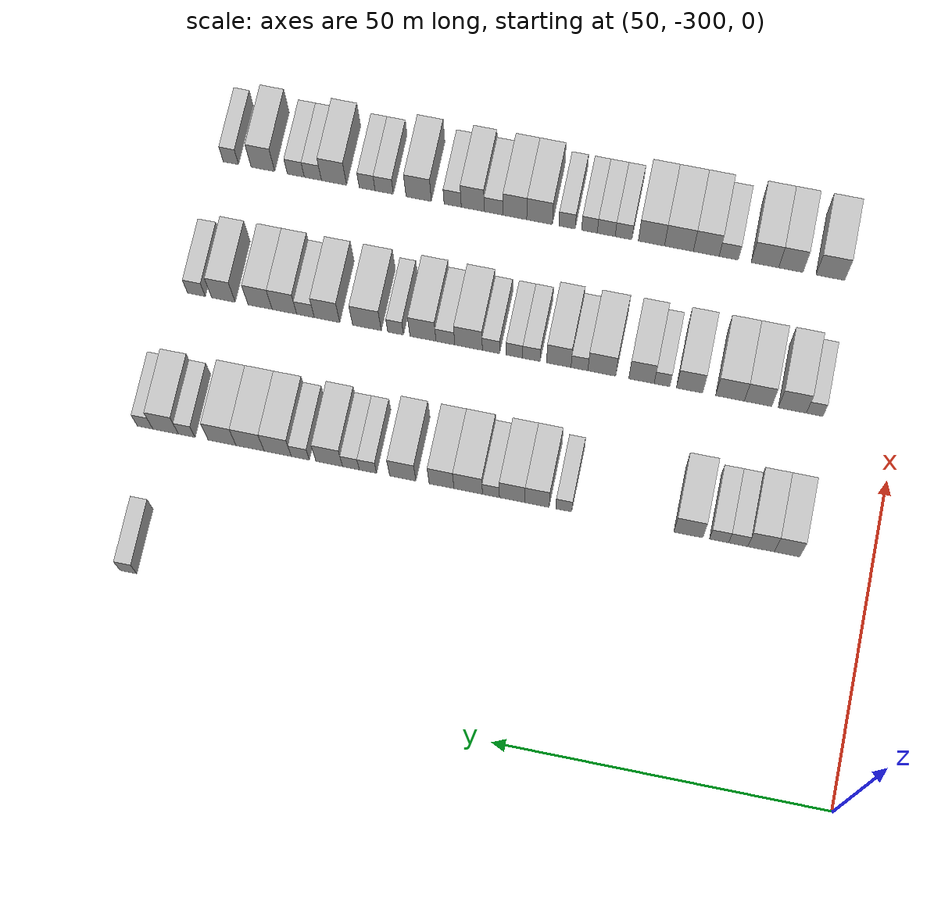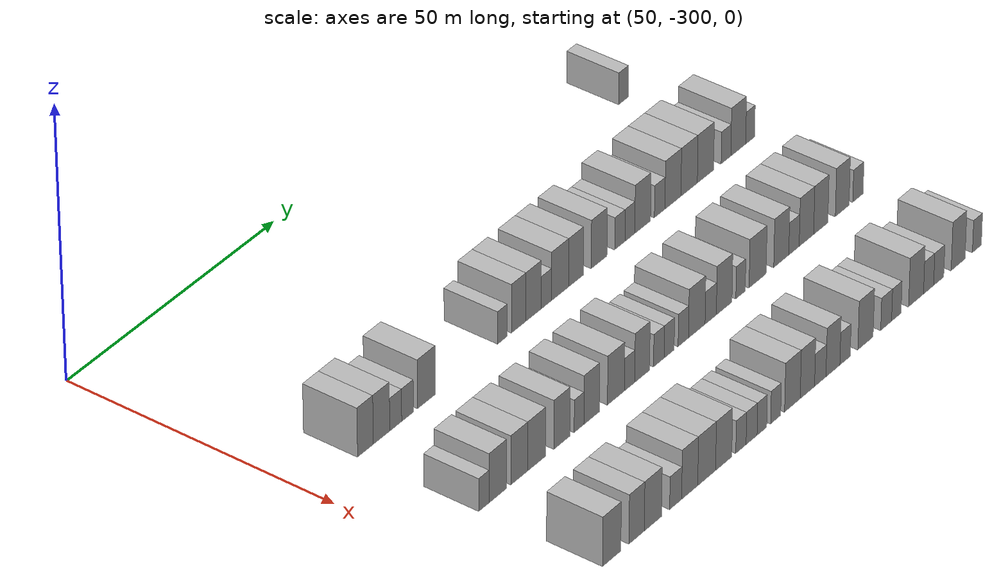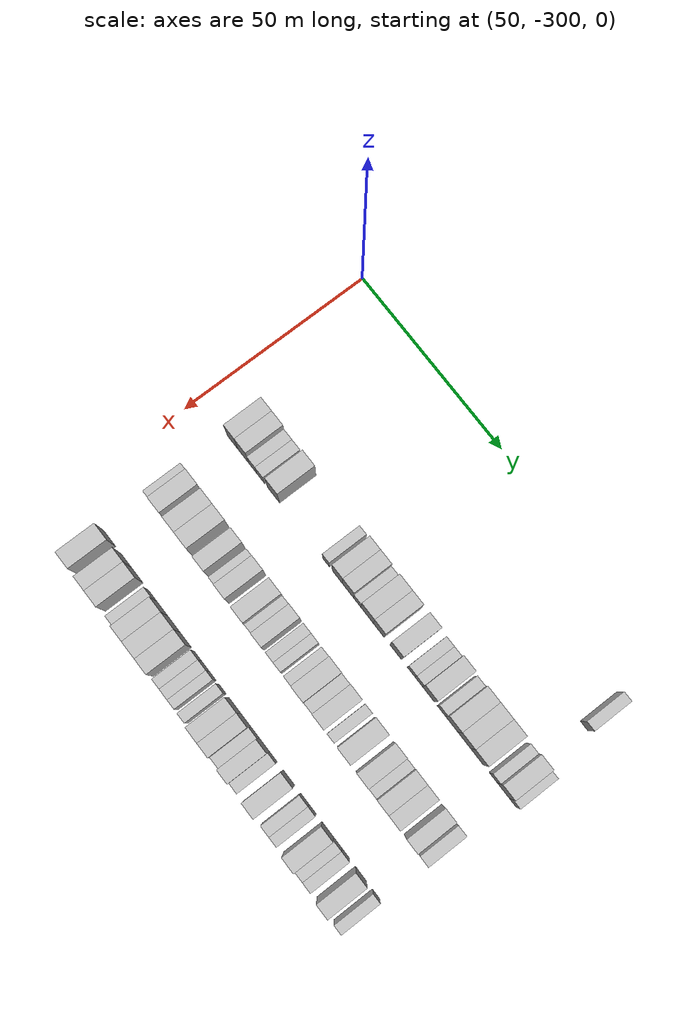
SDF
<sdf version="1.6">
 <world name="default">
  <model name="building_446">
   <static>1</static>
   <pose>69.0000 -192.4682 0 0.000000 0.000000 0.000000</pose>
   <link name="link">
    <pose>0 0 3.00 0 0 0</pose>
    <collision name="collision"><geometry><box><size>10.0000 2.5432 6.0000</size></box></geometry></collision>
    <visual name="visual">
     <cast_shadows>0</cast_shadows>
     <geometry><box><size>10.0000 2.5432 6.0000</size></box></geometry>
     <material>
      <script>
       <uri>model://HANNAS_wall/materials/scripts</uri>
       <uri>model://HANNAS_wall/materials/textures</uri>
       <name>vrc/HANNAS_wall</name>
      </script>
     </material>
    </visual>
   </link>
  </model>
  <model name="building_604">
   <static>1</static>
   <pose>91.0000 -287.2692 0 0.000000 0.000000 0.000000</pose>
   <link name="link">
    <pose>0 0 4.50 0 0 0</pose>
    <collision name="collision"><geometry><box><size>10.0000 3.8065 9.0000</size></box></geometry></collision>
    <visual name="visual">
     <cast_shadows>0</cast_shadows>
     <geometry><box><size>10.0000 3.8065 9.0000</size></box></geometry>
     <material>
      <script>
       <uri>model://HANNAS_wall/materials/scripts</uri>
       <uri>model://HANNAS_wall/materials/textures</uri>
       <name>vrc/HANNAS_wall</name>
      </script>
     </material>
    </visual>
   </link>
  </model>
  <model name="building_605">
   <static>1</static>
   <pose>91.0000 -283.3731 0 0.000000 0.000000 0.000000</pose>
   <link name="link">
    <pose>0 0 4.50 0 0 0</pose>
    <collision name="collision"><geometry><box><size>10.0000 3.9858 9.0000</size></box></geometry></collision>
    <visual name="visual">
     <cast_shadows>0</cast_shadows>
     <geometry><box><size>10.0000 3.9858 9.0000</size></box></geometry>
     <material>
      <script>
       <uri>model://HANNAS_wall/materials/scripts</uri>
       <uri>model://HANNAS_wall/materials/textures</uri>
       <name>vrc/HANNAS_wall</name>
      </script>
     </material>
    </visual>
   </link>
  </model>
  <model name="building_606">
   <static>1</static>
   <pose>91.0000 -279.9372 0 0.000000 0.000000 0.000000</pose>
   <link name="link">
    <pose>0 0 3.00 0 0 0</pose>
    <collision name="collision"><geometry><box><size>10.0000 2.8860 6.0000</size></box></geometry></collision>
    <visual name="visual">
     <cast_shadows>0</cast_shadows>
     <geometry><box><size>10.0000 2.8860 6.0000</size></box></geometry>
     <material>
      <script>
       <uri>model://HANNAS_wall/materials/scripts</uri>
       <uri>model://HANNAS_wall/materials/textures</uri>
       <name>vrc/HANNAS_wall</name>
      </script>
     </material>
    </visual>
   </link>
  </model>
  <model name="building_607">
   <static>1</static>
   <pose>91.0000 -277.0546 0 0.000000 0.000000 0.000000</pose>
   <link name="link">
    <pose>0 0 3.00 0 0 0</pose>
    <collision name="collision"><geometry><box><size>10.0000 2.8790 6.0000</size></box></geometry></collision>
    <visual name="visual">
     <cast_shadows>0</cast_shadows>
     <geometry><box><size>10.0000 2.8790 6.0000</size></box></geometry>
     <material>
      <script>
       <uri>model://HANNAS_wall/materials/scripts</uri>
       <uri>model://HANNAS_wall/materials/textures</uri>
       <name>vrc/HANNAS_wall</name>
      </script>
     </material>
    </visual>
   </link>
  </model>
  <model name="building_608">
   <static>1</static>
   <pose>91.0000 -272.4295 0 0.000000 0.000000 0.000000</pose>
   <link name="link">
    <pose>0 0 4.50 0 0 0</pose>
    <collision name="collision"><geometry><box><size>10.0000 4.3712 9.0000</size></box></geometry></collision>
    <visual name="visual">
     <cast_shadows>0</cast_shadows>
     <geometry><box><size>10.0000 4.3712 9.0000</size></box></geometry>
     <material>
      <script>
       <uri>model://HANNAS_wall/materials/scripts</uri>
       <uri>model://HANNAS_wall/materials/textures</uri>
       <name>vrc/HANNAS_wall</name>
      </script>
     </material>
    </visual>
   </link>
  </model>
  <model name="building_609">
   <static>1</static>
   <pose>91.0000 -253.5992 0 0.000000 0.000000 0.000000</pose>
   <link name="link">
    <pose>0 0 3.00 0 0 0</pose>
    <collision name="collision"><geometry><box><size>10.0000 2.4298 6.0000</size></box></geometry></collision>
    <visual name="visual">
     <cast_shadows>0</cast_shadows>
     <geometry><box><size>10.0000 2.4298 6.0000</size></box></geometry>
     <material>
      <script>
       <uri>model://HANNAS_wall/materials/scripts</uri>
       <uri>model://HANNAS_wall/materials/textures</uri>
       <name>vrc/HANNAS_wall</name>
      </script>
     </material>
    </visual>
   </link>
  </model>
  <model name="building_610">
   <static>1</static>
   <pose>91.0000 -249.5439 0 0.000000 0.000000 0.000000</pose>
   <link name="link">
    <pose>0 0 4.50 0 0 0</pose>
    <collision name="collision"><geometry><box><size>10.0000 3.6807 9.0000</size></box></geometry></collision>
    <visual name="visual">
     <cast_shadows>0</cast_shadows>
     <geometry><box><size>10.0000 3.6807 9.0000</size></box></geometry>
     <material>
      <script>
       <uri>model://HANNAS_wall/materials/scripts</uri>
       <uri>model://HANNAS_wall/materials/textures</uri>
       <name>vrc/HANNAS_wall</name>
      </script>
     </material>
    </visual>
   </link>
  </model>
  <model name="building_611">
   <static>1</static>
   <pose>91.0000 -245.7711 0 0.000000 0.000000 0.000000</pose>
   <link name="link">
    <pose>0 0 4.50 0 0 0</pose>
    <collision name="collision"><geometry><box><size>10.0000 3.8650 9.0000</size></box></geometry></collision>
    <visual name="visual">
     <cast_shadows>0</cast_shadows>
     <geometry><box><size>10.0000 3.8650 9.0000</size></box></geometry>
     <material>
      <script>
       <uri>model://HANNAS_wall/materials/scripts</uri>
       <uri>model://HANNAS_wall/materials/textures</uri>
       <name>vrc/HANNAS_wall</name>
      </script>
     </material>
    </visual>
   </link>
  </model>
  <model name="building_612">
   <static>1</static>
   <pose>91.0000 -242.5501 0 0.000000 0.000000 0.000000</pose>
   <link name="link">
    <pose>0 0 3.00 0 0 0</pose>
    <collision name="collision"><geometry><box><size>10.0000 2.5770 6.0000</size></box></geometry></collision>
    <visual name="visual">
     <cast_shadows>0</cast_shadows>
     <geometry><box><size>10.0000 2.5770 6.0000</size></box></geometry>
     <material>
      <script>
       <uri>model://HANNAS_wall/materials/scripts</uri>
       <uri>model://HANNAS_wall/materials/textures</uri>
       <name>vrc/HANNAS_wall</name>
      </script>
     </material>
    </visual>
   </link>
  </model>
  <model name="building_613">
   <static>1</static>
   <pose>91.0000 -239.0880 0 0.000000 0.000000 0.000000</pose>
   <link name="link">
    <pose>0 0 4.50 0 0 0</pose>
    <collision name="collision"><geometry><box><size>10.0000 4.3472 9.0000</size></box></geometry></collision>
    <visual name="visual">
     <cast_shadows>0</cast_shadows>
     <geometry><box><size>10.0000 4.3472 9.0000</size></box></geometry>
     <material>
      <script>
       <uri>model://HANNAS_wall/materials/scripts</uri>
       <uri>model://HANNAS_wall/materials/textures</uri>
       <name>vrc/HANNAS_wall</name>
      </script>
     </material>
    </visual>
   </link>
  </model>
  <model name="building_614">
   <static>1</static>
   <pose>91.0000 -235.0269 0 0.000000 0.000000 0.000000</pose>
   <link name="link">
    <pose>0 0 4.50 0 0 0</pose>
    <collision name="collision"><geometry><box><size>10.0000 3.7748 9.0000</size></box></geometry></collision>
    <visual name="visual">
     <cast_shadows>0</cast_shadows>
     <geometry><box><size>10.0000 3.7748 9.0000</size></box></geometry>
     <material>
      <script>
       <uri>model://HANNAS_wall/materials/scripts</uri>
       <uri>model://HANNAS_wall/materials/textures</uri>
       <name>vrc/HANNAS_wall</name>
      </script>
     </material>
    </visual>
   </link>
  </model>
  <model name="building_615">
   <static>1</static>
   <pose>91.0000 -229.1299 0 0.000000 0.000000 0.000000</pose>
   <link name="link">
    <pose>0 0 4.50 0 0 0</pose>
    <collision name="collision"><geometry><box><size>10.0000 4.0194 9.0000</size></box></geometry></collision>
    <visual name="visual">
     <cast_shadows>0</cast_shadows>
     <geometry><box><size>10.0000 4.0194 9.0000</size></box></geometry>
     <material>
      <script>
       <uri>model://HANNAS_wall/materials/scripts</uri>
       <uri>model://HANNAS_wall/materials/textures</uri>
       <name>vrc/HANNAS_wall</name>
      </script>
     </material>
    </visual>
   </link>
  </model>
  <model name="building_616">
   <static>1</static>
   <pose>91.0000 -223.7991 0 0.000000 0.000000 0.000000</pose>
   <link name="link">
    <pose>0 0 3.00 0 0 0</pose>
    <collision name="collision"><geometry><box><size>10.0000 2.6422 6.0000</size></box></geometry></collision>
    <visual name="visual">
     <cast_shadows>0</cast_shadows>
     <geometry><box><size>10.0000 2.6422 6.0000</size></box></geometry>
     <material>
      <script>
       <uri>model://HANNAS_wall/materials/scripts</uri>
       <uri>model://HANNAS_wall/materials/textures</uri>
       <name>vrc/HANNAS_wall</name>
      </script>
     </material>
    </visual>
   </link>
  </model>
  <model name="building_617">
   <static>1</static>
   <pose>91.0000 -221.1960 0 0.000000 0.000000 0.000000</pose>
   <link name="link">
    <pose>0 0 3.00 0 0 0</pose>
    <collision name="collision"><geometry><box><size>10.0000 2.5639 6.0000</size></box></geometry></collision>
    <visual name="visual">
     <cast_shadows>0</cast_shadows>
     <geometry><box><size>10.0000 2.5639 6.0000</size></box></geometry>
     <material>
      <script>
       <uri>model://HANNAS_wall/materials/scripts</uri>
       <uri>model://HANNAS_wall/materials/textures</uri>
       <name>vrc/HANNAS_wall</name>
      </script>
     </material>
    </visual>
   </link>
  </model>
  <model name="building_618">
   <static>1</static>
   <pose>91.0000 -217.8744 0 0.000000 0.000000 0.000000</pose>
   <link name="link">
    <pose>0 0 4.50 0 0 0</pose>
    <collision name="collision"><geometry><box><size>10.0000 4.0793 9.0000</size></box></geometry></collision>
    <visual name="visual">
     <cast_shadows>0</cast_shadows>
     <geometry><box><size>10.0000 4.0793 9.0000</size></box></geometry>
     <material>
      <script>
       <uri>model://HANNAS_wall/materials/scripts</uri>
       <uri>model://HANNAS_wall/materials/textures</uri>
       <name>vrc/HANNAS_wall</name>
      </script>
     </material>
    </visual>
   </link>
  </model>
  <model name="building_619">
   <static>1</static>
   <pose>91.0000 -213.4507 0 0.000000 0.000000 0.000000</pose>
   <link name="link">
    <pose>0 0 3.00 0 0 0</pose>
    <collision name="collision"><geometry><box><size>10.0000 2.7682 6.0000</size></box></geometry></collision>
    <visual name="visual">
     <cast_shadows>0</cast_shadows>
     <geometry><box><size>10.0000 2.7682 6.0000</size></box></geometry>
     <material>
      <script>
       <uri>model://HANNAS_wall/materials/scripts</uri>
       <uri>model://HANNAS_wall/materials/textures</uri>
       <name>vrc/HANNAS_wall</name>
      </script>
     </material>
    </visual>
   </link>
  </model>
  <model name="building_620">
   <static>1</static>
   <pose>91.0000 -209.9729 0 0.000000 0.000000 0.000000</pose>
   <link name="link">
    <pose>0 0 4.50 0 0 0</pose>
    <collision name="collision"><geometry><box><size>10.0000 4.1872 9.0000</size></box></geometry></collision>
    <visual name="visual">
     <cast_shadows>0</cast_shadows>
     <geometry><box><size>10.0000 4.1872 9.0000</size></box></geometry>
     <material>
      <script>
       <uri>model://HANNAS_wall/materials/scripts</uri>
       <uri>model://HANNAS_wall/materials/textures</uri>
       <name>vrc/HANNAS_wall</name>
      </script>
     </material>
    </visual>
   </link>
  </model>
  <model name="building_621">
   <static>1</static>
   <pose>91.0000 -205.7217 0 0.000000 0.000000 0.000000</pose>
   <link name="link">
    <pose>0 0 4.50 0 0 0</pose>
    <collision name="collision"><geometry><box><size>10.0000 4.3152 9.0000</size></box></geometry></collision>
    <visual name="visual">
     <cast_shadows>0</cast_shadows>
     <geometry><box><size>10.0000 4.3152 9.0000</size></box></geometry>
     <material>
      <script>
       <uri>model://HANNAS_wall/materials/scripts</uri>
       <uri>model://HANNAS_wall/materials/textures</uri>
       <name>vrc/HANNAS_wall</name>
      </script>
     </material>
    </visual>
   </link>
  </model>
  <model name="building_622">
   <static>1</static>
   <pose>91.0000 -201.4120 0 0.000000 0.000000 0.000000</pose>
   <link name="link">
    <pose>0 0 4.50 0 0 0</pose>
    <collision name="collision"><geometry><box><size>10.0000 4.3044 9.0000</size></box></geometry></collision>
    <visual name="visual">
     <cast_shadows>0</cast_shadows>
     <geometry><box><size>10.0000 4.3044 9.0000</size></box></geometry>
     <material>
      <script>
       <uri>model://HANNAS_wall/materials/scripts</uri>
       <uri>model://HANNAS_wall/materials/textures</uri>
       <name>vrc/HANNAS_wall</name>
      </script>
     </material>
    </visual>
   </link>
  </model>
  <model name="building_623">
   <static>1</static>
   <pose>91.0000 -195.9735 0 0.000000 0.000000 0.000000</pose>
   <link name="link">
    <pose>0 0 3.00 0 0 0</pose>
    <collision name="collision"><geometry><box><size>10.0000 2.5724 6.0000</size></box></geometry></collision>
    <visual name="visual">
     <cast_shadows>0</cast_shadows>
     <geometry><box><size>10.0000 2.5724 6.0000</size></box></geometry>
     <material>
      <script>
       <uri>model://HANNAS_wall/materials/scripts</uri>
       <uri>model://HANNAS_wall/materials/textures</uri>
       <name>vrc/HANNAS_wall</name>
      </script>
     </material>
    </visual>
   </link>
  </model>
  <model name="building_624">
   <static>1</static>
   <pose>91.0000 -192.7049 0 0.000000 0.000000 0.000000</pose>
   <link name="link">
    <pose>0 0 4.50 0 0 0</pose>
    <collision name="collision"><geometry><box><size>10.0000 3.9648 9.0000</size></box></geometry></collision>
    <visual name="visual">
     <cast_shadows>0</cast_shadows>
     <geometry><box><size>10.0000 3.9648 9.0000</size></box></geometry>
     <material>
      <script>
       <uri>model://HANNAS_wall/materials/scripts</uri>
       <uri>model://HANNAS_wall/materials/textures</uri>
       <name>vrc/HANNAS_wall</name>
      </script>
     </material>
    </visual>
   </link>
  </model>
  <model name="building_625">
   <static>1</static>
   <pose>91.0000 -189.5216 0 0.000000 0.000000 0.000000</pose>
   <link name="link">
    <pose>0 0 3.00 0 0 0</pose>
    <collision name="collision"><geometry><box><size>10.0000 2.4017 6.0000</size></box></geometry></collision>
    <visual name="visual">
     <cast_shadows>0</cast_shadows>
     <geometry><box><size>10.0000 2.4017 6.0000</size></box></geometry>
     <material>
      <script>
       <uri>model://HANNAS_wall/materials/scripts</uri>
       <uri>model://HANNAS_wall/materials/textures</uri>
       <name>vrc/HANNAS_wall</name>
      </script>
     </material>
    </visual>
   </link>
  </model>
  <model name="building_793">
   <static>1</static>
   <pose>113.0000 -287.7156 0 0.000000 0.000000 0.000000</pose>
   <link name="link">
    <pose>0 0 3.00 0 0 0</pose>
    <collision name="collision"><geometry><box><size>10.0000 2.5190 6.0000</size></box></geometry></collision>
    <visual name="visual">
     <cast_shadows>0</cast_shadows>
     <geometry><box><size>10.0000 2.5190 6.0000</size></box></geometry>
     <material>
      <script>
       <uri>model://HANNAS_wall/materials/scripts</uri>
       <uri>model://HANNAS_wall/materials/textures</uri>
       <name>vrc/HANNAS_wall</name>
      </script>
     </material>
    </visual>
   </link>
  </model>
  <model name="building_794">
   <static>1</static>
   <pose>113.0000 -284.3190 0 0.000000 0.000000 0.000000</pose>
   <link name="link">
    <pose>0 0 4.50 0 0 0</pose>
    <collision name="collision"><geometry><box><size>10.0000 4.2742 9.0000</size></box></geometry></collision>
    <visual name="visual">
     <cast_shadows>0</cast_shadows>
     <geometry><box><size>10.0000 4.2742 9.0000</size></box></geometry>
     <material>
      <script>
       <uri>model://HANNAS_wall/materials/scripts</uri>
       <uri>model://HANNAS_wall/materials/textures</uri>
       <name>vrc/HANNAS_wall</name>
      </script>
     </material>
    </visual>
   </link>
  </model>
  <model name="building_795">
   <static>1</static>
   <pose>113.0000 -279.0881 0 0.000000 0.000000 0.000000</pose>
   <link name="link">
    <pose>0 0 4.50 0 0 0</pose>
    <collision name="collision"><geometry><box><size>10.0000 4.1875 9.0000</size></box></geometry></collision>
    <visual name="visual">
     <cast_shadows>0</cast_shadows>
     <geometry><box><size>10.0000 4.1875 9.0000</size></box></geometry>
     <material>
      <script>
       <uri>model://HANNAS_wall/materials/scripts</uri>
       <uri>model://HANNAS_wall/materials/textures</uri>
       <name>vrc/HANNAS_wall</name>
      </script>
     </material>
    </visual>
   </link>
  </model>
  <model name="building_796">
   <static>1</static>
   <pose>113.0000 -274.7979 0 0.000000 0.000000 0.000000</pose>
   <link name="link">
    <pose>0 0 4.50 0 0 0</pose>
    <collision name="collision"><geometry><box><size>10.0000 4.3929 9.0000</size></box></geometry></collision>
    <visual name="visual">
     <cast_shadows>0</cast_shadows>
     <geometry><box><size>10.0000 4.3929 9.0000</size></box></geometry>
     <material>
      <script>
       <uri>model://HANNAS_wall/materials/scripts</uri>
       <uri>model://HANNAS_wall/materials/textures</uri>
       <name>vrc/HANNAS_wall</name>
      </script>
     </material>
    </visual>
   </link>
  </model>
  <model name="building_797">
   <static>1</static>
   <pose>113.0000 -268.5914 0 0.000000 0.000000 0.000000</pose>
   <link name="link">
    <pose>0 0 4.50 0 0 0</pose>
    <collision name="collision"><geometry><box><size>10.0000 4.0203 9.0000</size></box></geometry></collision>
    <visual name="visual">
     <cast_shadows>0</cast_shadows>
     <geometry><box><size>10.0000 4.0203 9.0000</size></box></geometry>
     <material>
      <script>
       <uri>model://HANNAS_wall/materials/scripts</uri>
       <uri>model://HANNAS_wall/materials/textures</uri>
       <name>vrc/HANNAS_wall</name>
      </script>
     </material>
    </visual>
   </link>
  </model>
  <model name="building_798">
   <static>1</static>
   <pose>113.0000 -264.3754 0 0.000000 0.000000 0.000000</pose>
   <link name="link">
    <pose>0 0 3.00 0 0 0</pose>
    <collision name="collision"><geometry><box><size>10.0000 2.4116 6.0000</size></box></geometry></collision>
    <visual name="visual">
     <cast_shadows>0</cast_shadows>
     <geometry><box><size>10.0000 2.4116 6.0000</size></box></geometry>
     <material>
      <script>
       <uri>model://HANNAS_wall/materials/scripts</uri>
       <uri>model://HANNAS_wall/materials/textures</uri>
       <name>vrc/HANNAS_wall</name>
      </script>
     </material>
    </visual>
   </link>
  </model>
  <model name="building_799">
   <static>1</static>
   <pose>113.0000 -261.2168 0 0.000000 0.000000 0.000000</pose>
   <link name="link">
    <pose>0 0 4.50 0 0 0</pose>
    <collision name="collision"><geometry><box><size>10.0000 3.9056 9.0000</size></box></geometry></collision>
    <visual name="visual">
     <cast_shadows>0</cast_shadows>
     <geometry><box><size>10.0000 3.9056 9.0000</size></box></geometry>
     <material>
      <script>
       <uri>model://HANNAS_wall/materials/scripts</uri>
       <uri>model://HANNAS_wall/materials/textures</uri>
       <name>vrc/HANNAS_wall</name>
      </script>
     </material>
    </visual>
   </link>
  </model>
  <model name="building_800">
   <static>1</static>
   <pose>113.0000 -255.1199 0 0.000000 0.000000 0.000000</pose>
   <link name="link">
    <pose>0 0 4.50 0 0 0</pose>
    <collision name="collision"><geometry><box><size>10.0000 4.2883 9.0000</size></box></geometry></collision>
    <visual name="visual">
     <cast_shadows>0</cast_shadows>
     <geometry><box><size>10.0000 4.2883 9.0000</size></box></geometry>
     <material>
      <script>
       <uri>model://HANNAS_wall/materials/scripts</uri>
       <uri>model://HANNAS_wall/materials/textures</uri>
       <name>vrc/HANNAS_wall</name>
      </script>
     </material>
    </visual>
   </link>
  </model>
  <model name="building_801">
   <static>1</static>
   <pose>113.0000 -251.6773 0 0.000000 0.000000 0.000000</pose>
   <link name="link">
    <pose>0 0 3.00 0 0 0</pose>
    <collision name="collision"><geometry><box><size>10.0000 2.5969 6.0000</size></box></geometry></collision>
    <visual name="visual">
     <cast_shadows>0</cast_shadows>
     <geometry><box><size>10.0000 2.5969 6.0000</size></box></geometry>
     <material>
      <script>
       <uri>model://HANNAS_wall/materials/scripts</uri>
       <uri>model://HANNAS_wall/materials/textures</uri>
       <name>vrc/HANNAS_wall</name>
      </script>
     </material>
    </visual>
   </link>
  </model>
  <model name="building_802">
   <static>1</static>
   <pose>113.0000 -248.5006 0 0.000000 0.000000 0.000000</pose>
   <link name="link">
    <pose>0 0 4.50 0 0 0</pose>
    <collision name="collision"><geometry><box><size>10.0000 3.7564 9.0000</size></box></geometry></collision>
    <visual name="visual">
     <cast_shadows>0</cast_shadows>
     <geometry><box><size>10.0000 3.7564 9.0000</size></box></geometry>
     <material>
      <script>
       <uri>model://HANNAS_wall/materials/scripts</uri>
       <uri>model://HANNAS_wall/materials/textures</uri>
       <name>vrc/HANNAS_wall</name>
      </script>
     </material>
    </visual>
   </link>
  </model>
  <model name="building_803">
   <static>1</static>
   <pose>113.0000 -244.2729 0 0.000000 0.000000 0.000000</pose>
   <link name="link">
    <pose>0 0 3.00 0 0 0</pose>
    <collision name="collision"><geometry><box><size>10.0000 2.6989 6.0000</size></box></geometry></collision>
    <visual name="visual">
     <cast_shadows>0</cast_shadows>
     <geometry><box><size>10.0000 2.6989 6.0000</size></box></geometry>
     <material>
      <script>
       <uri>model://HANNAS_wall/materials/scripts</uri>
       <uri>model://HANNAS_wall/materials/textures</uri>
       <name>vrc/HANNAS_wall</name>
      </script>
     </material>
    </visual>
   </link>
  </model>
  <model name="building_804">
   <static>1</static>
   <pose>113.0000 -241.6447 0 0.000000 0.000000 0.000000</pose>
   <link name="link">
    <pose>0 0 3.00 0 0 0</pose>
    <collision name="collision"><geometry><box><size>10.0000 2.5574 6.0000</size></box></geometry></collision>
    <visual name="visual">
     <cast_shadows>0</cast_shadows>
     <geometry><box><size>10.0000 2.5574 6.0000</size></box></geometry>
     <material>
      <script>
       <uri>model://HANNAS_wall/materials/scripts</uri>
       <uri>model://HANNAS_wall/materials/textures</uri>
       <name>vrc/HANNAS_wall</name>
      </script>
     </material>
    </visual>
   </link>
  </model>
  <model name="building_805">
   <static>1</static>
   <pose>113.0000 -238.0315 0 0.000000 0.000000 0.000000</pose>
   <link name="link">
    <pose>0 0 3.00 0 0 0</pose>
    <collision name="collision"><geometry><box><size>10.0000 2.6691 6.0000</size></box></geometry></collision>
    <visual name="visual">
     <cast_shadows>0</cast_shadows>
     <geometry><box><size>10.0000 2.6691 6.0000</size></box></geometry>
     <material>
      <script>
       <uri>model://HANNAS_wall/materials/scripts</uri>
       <uri>model://HANNAS_wall/materials/textures</uri>
       <name>vrc/HANNAS_wall</name>
      </script>
     </material>
    </visual>
   </link>
  </model>
  <model name="building_806">
   <static>1</static>
   <pose>113.0000 -234.5622 0 0.000000 0.000000 0.000000</pose>
   <link name="link">
    <pose>0 0 4.50 0 0 0</pose>
    <collision name="collision"><geometry><box><size>10.0000 4.2696 9.0000</size></box></geometry></collision>
    <visual name="visual">
     <cast_shadows>0</cast_shadows>
     <geometry><box><size>10.0000 4.2696 9.0000</size></box></geometry>
     <material>
      <script>
       <uri>model://HANNAS_wall/materials/scripts</uri>
       <uri>model://HANNAS_wall/materials/textures</uri>
       <name>vrc/HANNAS_wall</name>
      </script>
     </material>
    </visual>
   </link>
  </model>
  <model name="building_807">
   <static>1</static>
   <pose>113.0000 -230.9724 0 0.000000 0.000000 0.000000</pose>
   <link name="link">
    <pose>0 0 3.00 0 0 0</pose>
    <collision name="collision"><geometry><box><size>10.0000 2.9099 6.0000</size></box></geometry></collision>
    <visual name="visual">
     <cast_shadows>0</cast_shadows>
     <geometry><box><size>10.0000 2.9099 6.0000</size></box></geometry>
     <material>
      <script>
       <uri>model://HANNAS_wall/materials/scripts</uri>
       <uri>model://HANNAS_wall/materials/textures</uri>
       <name>vrc/HANNAS_wall</name>
      </script>
     </material>
    </visual>
   </link>
  </model>
  <model name="building_808">
   <static>1</static>
   <pose>113.0000 -227.4947 0 0.000000 0.000000 0.000000</pose>
   <link name="link">
    <pose>0 0 4.50 0 0 0</pose>
    <collision name="collision"><geometry><box><size>10.0000 4.0455 9.0000</size></box></geometry></collision>
    <visual name="visual">
     <cast_shadows>0</cast_shadows>
     <geometry><box><size>10.0000 4.0455 9.0000</size></box></geometry>
     <material>
      <script>
       <uri>model://HANNAS_wall/materials/scripts</uri>
       <uri>model://HANNAS_wall/materials/textures</uri>
       <name>vrc/HANNAS_wall</name>
      </script>
     </material>
    </visual>
   </link>
  </model>
  <model name="building_809">
   <static>1</static>
   <pose>113.0000 -223.2456 0 0.000000 0.000000 0.000000</pose>
   <link name="link">
    <pose>0 0 3.00 0 0 0</pose>
    <collision name="collision"><geometry><box><size>10.0000 2.4526 6.0000</size></box></geometry></collision>
    <visual name="visual">
     <cast_shadows>0</cast_shadows>
     <geometry><box><size>10.0000 2.4526 6.0000</size></box></geometry>
     <material>
      <script>
       <uri>model://HANNAS_wall/materials/scripts</uri>
       <uri>model://HANNAS_wall/materials/textures</uri>
       <name>vrc/HANNAS_wall</name>
      </script>
     </material>
    </visual>
   </link>
  </model>
  <model name="building_810">
   <static>1</static>
   <pose>113.0000 -218.7899 0 0.000000 0.000000 0.000000</pose>
   <link name="link">
    <pose>0 0 4.50 0 0 0</pose>
    <collision name="collision"><geometry><box><size>10.0000 4.4589 9.0000</size></box></geometry></collision>
    <visual name="visual">
     <cast_shadows>0</cast_shadows>
     <geometry><box><size>10.0000 4.4589 9.0000</size></box></geometry>
     <material>
      <script>
       <uri>model://HANNAS_wall/materials/scripts</uri>
       <uri>model://HANNAS_wall/materials/textures</uri>
       <name>vrc/HANNAS_wall</name>
      </script>
     </material>
    </visual>
   </link>
  </model>
  <model name="building_811">
   <static>1</static>
   <pose>113.0000 -212.5765 0 0.000000 0.000000 0.000000</pose>
   <link name="link">
    <pose>0 0 4.50 0 0 0</pose>
    <collision name="collision"><geometry><box><size>10.0000 3.9678 9.0000</size></box></geometry></collision>
    <visual name="visual">
     <cast_shadows>0</cast_shadows>
     <geometry><box><size>10.0000 3.9678 9.0000</size></box></geometry>
     <material>
      <script>
       <uri>model://HANNAS_wall/materials/scripts</uri>
       <uri>model://HANNAS_wall/materials/textures</uri>
       <name>vrc/HANNAS_wall</name>
      </script>
     </material>
    </visual>
   </link>
  </model>
  <model name="building_812">
   <static>1</static>
   <pose>113.0000 -209.2162 0 0.000000 0.000000 0.000000</pose>
   <link name="link">
    <pose>0 0 3.00 0 0 0</pose>
    <collision name="collision"><geometry><box><size>10.0000 2.7529 6.0000</size></box></geometry></collision>
    <visual name="visual">
     <cast_shadows>0</cast_shadows>
     <geometry><box><size>10.0000 2.7529 6.0000</size></box></geometry>
     <material>
      <script>
       <uri>model://HANNAS_wall/materials/scripts</uri>
       <uri>model://HANNAS_wall/materials/textures</uri>
       <name>vrc/HANNAS_wall</name>
      </script>
     </material>
    </visual>
   </link>
  </model>
  <model name="building_813">
   <static>1</static>
   <pose>113.0000 -205.9183 0 0.000000 0.000000 0.000000</pose>
   <link name="link">
    <pose>0 0 4.50 0 0 0</pose>
    <collision name="collision"><geometry><box><size>10.0000 3.8430 9.0000</size></box></geometry></collision>
    <visual name="visual">
     <cast_shadows>0</cast_shadows>
     <geometry><box><size>10.0000 3.8430 9.0000</size></box></geometry>
     <material>
      <script>
       <uri>model://HANNAS_wall/materials/scripts</uri>
       <uri>model://HANNAS_wall/materials/textures</uri>
       <name>vrc/HANNAS_wall</name>
      </script>
     </material>
    </visual>
   </link>
  </model>
  <model name="building_814">
   <static>1</static>
   <pose>113.0000 -202.1085 0 0.000000 0.000000 0.000000</pose>
   <link name="link">
    <pose>0 0 4.50 0 0 0</pose>
    <collision name="collision"><geometry><box><size>10.0000 3.7765 9.0000</size></box></geometry></collision>
    <visual name="visual">
     <cast_shadows>0</cast_shadows>
     <geometry><box><size>10.0000 3.7765 9.0000</size></box></geometry>
     <material>
      <script>
       <uri>model://HANNAS_wall/materials/scripts</uri>
       <uri>model://HANNAS_wall/materials/textures</uri>
       <name>vrc/HANNAS_wall</name>
      </script>
     </material>
    </visual>
   </link>
  </model>
  <model name="building_815">
   <static>1</static>
   <pose>113.0000 -196.3801 0 0.000000 0.000000 0.000000</pose>
   <link name="link">
    <pose>0 0 4.50 0 0 0</pose>
    <collision name="collision"><geometry><box><size>10.0000 3.6804 9.0000</size></box></geometry></collision>
    <visual name="visual">
     <cast_shadows>0</cast_shadows>
     <geometry><box><size>10.0000 3.6804 9.0000</size></box></geometry>
     <material>
      <script>
       <uri>model://HANNAS_wall/materials/scripts</uri>
       <uri>model://HANNAS_wall/materials/textures</uri>
       <name>vrc/HANNAS_wall</name>
      </script>
     </material>
    </visual>
   </link>
  </model>
  <model name="building_816">
   <static>1</static>
   <pose>113.0000 -192.1447 0 0.000000 0.000000 0.000000</pose>
   <link name="link">
    <pose>0 0 3.00 0 0 0</pose>
    <collision name="collision"><geometry><box><size>10.0000 2.7903 6.0000</size></box></geometry></collision>
    <visual name="visual">
     <cast_shadows>0</cast_shadows>
     <geometry><box><size>10.0000 2.7903 6.0000</size></box></geometry>
     <material>
      <script>
       <uri>model://HANNAS_wall/materials/scripts</uri>
       <uri>model://HANNAS_wall/materials/textures</uri>
       <name>vrc/HANNAS_wall</name>
      </script>
     </material>
    </visual>
   </link>
  </model>
  <model name="building_984">
   <static>1</static>
   <pose>135.0000 -286.4821 0 0.000000 0.000000 0.000000</pose>
   <link name="link">
    <pose>0 0 4.50 0 0 0</pose>
    <collision name="collision"><geometry><box><size>10.0000 4.4617 9.0000</size></box></geometry></collision>
    <visual name="visual">
     <cast_shadows>0</cast_shadows>
     <geometry><box><size>10.0000 4.4617 9.0000</size></box></geometry>
     <material>
      <script>
       <uri>model://HANNAS_wall/materials/scripts</uri>
       <uri>model://HANNAS_wall/materials/textures</uri>
       <name>vrc/HANNAS_wall</name>
      </script>
     </material>
    </visual>
   </link>
  </model>
  <model name="building_985">
   <static>1</static>
   <pose>135.0000 -280.3594 0 0.000000 0.000000 0.000000</pose>
   <link name="link">
    <pose>0 0 4.50 0 0 0</pose>
    <collision name="collision"><geometry><box><size>10.0000 3.7839 9.0000</size></box></geometry></collision>
    <visual name="visual">
     <cast_shadows>0</cast_shadows>
     <geometry><box><size>10.0000 3.7839 9.0000</size></box></geometry>
     <material>
      <script>
       <uri>model://HANNAS_wall/materials/scripts</uri>
       <uri>model://HANNAS_wall/materials/textures</uri>
       <name>vrc/HANNAS_wall</name>
      </script>
     </material>
    </visual>
   </link>
  </model>
  <model name="building_986">
   <static>1</static>
   <pose>135.0000 -276.3314 0 0.000000 0.000000 0.000000</pose>
   <link name="link">
    <pose>0 0 4.50 0 0 0</pose>
    <collision name="collision"><geometry><box><size>10.0000 4.2720 9.0000</size></box></geometry></collision>
    <visual name="visual">
     <cast_shadows>0</cast_shadows>
     <geometry><box><size>10.0000 4.2720 9.0000</size></box></geometry>
     <material>
      <script>
       <uri>model://HANNAS_wall/materials/scripts</uri>
       <uri>model://HANNAS_wall/materials/textures</uri>
       <name>vrc/HANNAS_wall</name>
      </script>
     </material>
    </visual>
   </link>
  </model>
  <model name="building_987">
   <static>1</static>
   <pose>135.0000 -270.6992 0 0.000000 0.000000 0.000000</pose>
   <link name="link">
    <pose>0 0 3.00 0 0 0</pose>
    <collision name="collision"><geometry><box><size>10.0000 2.9925 6.0000</size></box></geometry></collision>
    <visual name="visual">
     <cast_shadows>0</cast_shadows>
     <geometry><box><size>10.0000 2.9925 6.0000</size></box></geometry>
     <material>
      <script>
       <uri>model://HANNAS_wall/materials/scripts</uri>
       <uri>model://HANNAS_wall/materials/textures</uri>
       <name>vrc/HANNAS_wall</name>
      </script>
     </material>
    </visual>
   </link>
  </model>
  <model name="building_988">
   <static>1</static>
   <pose>135.0000 -267.1921 0 0.000000 0.000000 0.000000</pose>
   <link name="link">
    <pose>0 0 4.50 0 0 0</pose>
    <collision name="collision"><geometry><box><size>10.0000 4.0217 9.0000</size></box></geometry></collision>
    <visual name="visual">
     <cast_shadows>0</cast_shadows>
     <geometry><box><size>10.0000 4.0217 9.0000</size></box></geometry>
     <material>
      <script>
       <uri>model://HANNAS_wall/materials/scripts</uri>
       <uri>model://HANNAS_wall/materials/textures</uri>
       <name>vrc/HANNAS_wall</name>
      </script>
     </material>
    </visual>
   </link>
  </model>
  <model name="building_989">
   <static>1</static>
   <pose>135.0000 -262.9366 0 0.000000 0.000000 0.000000</pose>
   <link name="link">
    <pose>0 0 4.50 0 0 0</pose>
    <collision name="collision"><geometry><box><size>10.0000 4.4893 9.0000</size></box></geometry></collision>
    <visual name="visual">
     <cast_shadows>0</cast_shadows>
     <geometry><box><size>10.0000 4.4893 9.0000</size></box></geometry>
     <material>
      <script>
       <uri>model://HANNAS_wall/materials/scripts</uri>
       <uri>model://HANNAS_wall/materials/textures</uri>
       <name>vrc/HANNAS_wall</name>
      </script>
     </material>
    </visual>
   </link>
  </model>
  <model name="building_990">
   <static>1</static>
   <pose>135.0000 -258.6471 0 0.000000 0.000000 0.000000</pose>
   <link name="link">
    <pose>0 0 4.50 0 0 0</pose>
    <collision name="collision"><geometry><box><size>10.0000 4.0898 9.0000</size></box></geometry></collision>
    <visual name="visual">
     <cast_shadows>0</cast_shadows>
     <geometry><box><size>10.0000 4.0898 9.0000</size></box></geometry>
     <material>
      <script>
       <uri>model://HANNAS_wall/materials/scripts</uri>
       <uri>model://HANNAS_wall/materials/textures</uri>
       <name>vrc/HANNAS_wall</name>
      </script>
     </material>
    </visual>
   </link>
  </model>
  <model name="building_991">
   <static>1</static>
   <pose>135.0000 -254.2912 0 0.000000 0.000000 0.000000</pose>
   <link name="link">
    <pose>0 0 3.00 0 0 0</pose>
    <collision name="collision"><geometry><box><size>10.0000 2.6220 6.0000</size></box></geometry></collision>
    <visual name="visual">
     <cast_shadows>0</cast_shadows>
     <geometry><box><size>10.0000 2.6220 6.0000</size></box></geometry>
     <material>
      <script>
       <uri>model://HANNAS_wall/materials/scripts</uri>
       <uri>model://HANNAS_wall/materials/textures</uri>
       <name>vrc/HANNAS_wall</name>
      </script>
     </material>
    </visual>
   </link>
  </model>
  <model name="building_992">
   <static>1</static>
   <pose>135.0000 -251.5784 0 0.000000 0.000000 0.000000</pose>
   <link name="link">
    <pose>0 0 3.00 0 0 0</pose>
    <collision name="collision"><geometry><box><size>10.0000 2.8036 6.0000</size></box></geometry></collision>
    <visual name="visual">
     <cast_shadows>0</cast_shadows>
     <geometry><box><size>10.0000 2.8036 6.0000</size></box></geometry>
     <material>
      <script>
       <uri>model://HANNAS_wall/materials/scripts</uri>
       <uri>model://HANNAS_wall/materials/textures</uri>
       <name>vrc/HANNAS_wall</name>
      </script>
     </material>
    </visual>
   </link>
  </model>
  <model name="building_993">
   <static>1</static>
   <pose>135.0000 -248.9492 0 0.000000 0.000000 0.000000</pose>
   <link name="link">
    <pose>0 0 3.00 0 0 0</pose>
    <collision name="collision"><geometry><box><size>10.0000 2.4547 6.0000</size></box></geometry></collision>
    <visual name="visual">
     <cast_shadows>0</cast_shadows>
     <geometry><box><size>10.0000 2.4547 6.0000</size></box></geometry>
     <material>
      <script>
       <uri>model://HANNAS_wall/materials/scripts</uri>
       <uri>model://HANNAS_wall/materials/textures</uri>
       <name>vrc/HANNAS_wall</name>
      </script>
     </material>
    </visual>
   </link>
  </model>
  <model name="building_994">
   <static>1</static>
   <pose>135.0000 -245.4341 0 0.000000 0.000000 0.000000</pose>
   <link name="link">
    <pose>0 0 3.00 0 0 0</pose>
    <collision name="collision"><geometry><box><size>10.0000 2.5755 6.0000</size></box></geometry></collision>
    <visual name="visual">
     <cast_shadows>0</cast_shadows>
     <geometry><box><size>10.0000 2.5755 6.0000</size></box></geometry>
     <material>
      <script>
       <uri>model://HANNAS_wall/materials/scripts</uri>
       <uri>model://HANNAS_wall/materials/textures</uri>
       <name>vrc/HANNAS_wall</name>
      </script>
     </material>
    </visual>
   </link>
  </model>
  <model name="building_995">
   <static>1</static>
   <pose>135.0000 -241.1290 0 0.000000 0.000000 0.000000</pose>
   <link name="link">
    <pose>0 0 4.50 0 0 0</pose>
    <collision name="collision"><geometry><box><size>10.0000 4.0347 9.0000</size></box></geometry></collision>
    <visual name="visual">
     <cast_shadows>0</cast_shadows>
     <geometry><box><size>10.0000 4.0347 9.0000</size></box></geometry>
     <material>
      <script>
       <uri>model://HANNAS_wall/materials/scripts</uri>
       <uri>model://HANNAS_wall/materials/textures</uri>
       <name>vrc/HANNAS_wall</name>
      </script>
     </material>
    </visual>
   </link>
  </model>
  <model name="building_996">
   <static>1</static>
   <pose>135.0000 -237.2576 0 0.000000 0.000000 0.000000</pose>
   <link name="link">
    <pose>0 0 4.50 0 0 0</pose>
    <collision name="collision"><geometry><box><size>10.0000 3.7082 9.0000</size></box></geometry></collision>
    <visual name="visual">
     <cast_shadows>0</cast_shadows>
     <geometry><box><size>10.0000 3.7082 9.0000</size></box></geometry>
     <material>
      <script>
       <uri>model://HANNAS_wall/materials/scripts</uri>
       <uri>model://HANNAS_wall/materials/textures</uri>
       <name>vrc/HANNAS_wall</name>
      </script>
     </material>
    </visual>
   </link>
  </model>
  <model name="building_997">
   <static>1</static>
   <pose>135.0000 -233.9249 0 0.000000 0.000000 0.000000</pose>
   <link name="link">
    <pose>0 0 3.00 0 0 0</pose>
    <collision name="collision"><geometry><box><size>10.0000 2.9572 6.0000</size></box></geometry></collision>
    <visual name="visual">
     <cast_shadows>0</cast_shadows>
     <geometry><box><size>10.0000 2.9572 6.0000</size></box></geometry>
     <material>
      <script>
       <uri>model://HANNAS_wall/materials/scripts</uri>
       <uri>model://HANNAS_wall/materials/textures</uri>
       <name>vrc/HANNAS_wall</name>
      </script>
     </material>
    </visual>
   </link>
  </model>
  <model name="building_998">
   <static>1</static>
   <pose>135.0000 -230.6324 0 0.000000 0.000000 0.000000</pose>
   <link name="link">
    <pose>0 0 4.50 0 0 0</pose>
    <collision name="collision"><geometry><box><size>10.0000 3.6278 9.0000</size></box></geometry></collision>
    <visual name="visual">
     <cast_shadows>0</cast_shadows>
     <geometry><box><size>10.0000 3.6278 9.0000</size></box></geometry>
     <material>
      <script>
       <uri>model://HANNAS_wall/materials/scripts</uri>
       <uri>model://HANNAS_wall/materials/textures</uri>
       <name>vrc/HANNAS_wall</name>
      </script>
     </material>
    </visual>
   </link>
  </model>
  <model name="building_999">
   <static>1</static>
   <pose>135.0000 -227.4651 0 0.000000 0.000000 0.000000</pose>
   <link name="link">
    <pose>0 0 3.00 0 0 0</pose>
    <collision name="collision"><geometry><box><size>10.0000 2.7067 6.0000</size></box></geometry></collision>
    <visual name="visual">
     <cast_shadows>0</cast_shadows>
     <geometry><box><size>10.0000 2.7067 6.0000</size></box></geometry>
     <material>
      <script>
       <uri>model://HANNAS_wall/materials/scripts</uri>
       <uri>model://HANNAS_wall/materials/textures</uri>
       <name>vrc/HANNAS_wall</name>
      </script>
     </material>
    </visual>
   </link>
  </model>
  <model name="building_1000">
   <static>1</static>
   <pose>135.0000 -222.1053 0 0.000000 0.000000 0.000000</pose>
   <link name="link">
    <pose>0 0 4.50 0 0 0</pose>
    <collision name="collision"><geometry><box><size>10.0000 4.0129 9.0000</size></box></geometry></collision>
    <visual name="visual">
     <cast_shadows>0</cast_shadows>
     <geometry><box><size>10.0000 4.0129 9.0000</size></box></geometry>
     <material>
      <script>
       <uri>model://HANNAS_wall/materials/scripts</uri>
       <uri>model://HANNAS_wall/materials/textures</uri>
       <name>vrc/HANNAS_wall</name>
      </script>
     </material>
    </visual>
   </link>
  </model>
  <model name="building_1001">
   <static>1</static>
   <pose>135.0000 -216.6579 0 0.000000 0.000000 0.000000</pose>
   <link name="link">
    <pose>0 0 3.00 0 0 0</pose>
    <collision name="collision"><geometry><box><size>10.0000 2.8819 6.0000</size></box></geometry></collision>
    <visual name="visual">
     <cast_shadows>0</cast_shadows>
     <geometry><box><size>10.0000 2.8819 6.0000</size></box></geometry>
     <material>
      <script>
       <uri>model://HANNAS_wall/materials/scripts</uri>
       <uri>model://HANNAS_wall/materials/textures</uri>
       <name>vrc/HANNAS_wall</name>
      </script>
     </material>
    </visual>
   </link>
  </model>
  <model name="building_1002">
   <static>1</static>
   <pose>135.0000 -213.9587 0 0.000000 0.000000 0.000000</pose>
   <link name="link">
    <pose>0 0 3.00 0 0 0</pose>
    <collision name="collision"><geometry><box><size>10.0000 2.5166 6.0000</size></box></geometry></collision>
    <visual name="visual">
     <cast_shadows>0</cast_shadows>
     <geometry><box><size>10.0000 2.5166 6.0000</size></box></geometry>
     <material>
      <script>
       <uri>model://HANNAS_wall/materials/scripts</uri>
       <uri>model://HANNAS_wall/materials/textures</uri>
       <name>vrc/HANNAS_wall</name>
      </script>
     </material>
    </visual>
   </link>
  </model>
  <model name="building_1003">
   <static>1</static>
   <pose>135.0000 -208.7087 0 0.000000 0.000000 0.000000</pose>
   <link name="link">
    <pose>0 0 4.50 0 0 0</pose>
    <collision name="collision"><geometry><box><size>10.0000 3.9833 9.0000</size></box></geometry></collision>
    <visual name="visual">
     <cast_shadows>0</cast_shadows>
     <geometry><box><size>10.0000 3.9833 9.0000</size></box></geometry>
     <material>
      <script>
       <uri>model://HANNAS_wall/materials/scripts</uri>
       <uri>model://HANNAS_wall/materials/textures</uri>
       <name>vrc/HANNAS_wall</name>
      </script>
     </material>
    </visual>
   </link>
  </model>
  <model name="building_1004">
   <static>1</static>
   <pose>135.0000 -205.3559 0 0.000000 0.000000 0.000000</pose>
   <link name="link">
    <pose>0 0 3.00 0 0 0</pose>
    <collision name="collision"><geometry><box><size>10.0000 2.7222 6.0000</size></box></geometry></collision>
    <visual name="visual">
     <cast_shadows>0</cast_shadows>
     <geometry><box><size>10.0000 2.7222 6.0000</size></box></geometry>
     <material>
      <script>
       <uri>model://HANNAS_wall/materials/scripts</uri>
       <uri>model://HANNAS_wall/materials/textures</uri>
       <name>vrc/HANNAS_wall</name>
      </script>
     </material>
    </visual>
   </link>
  </model>
  <model name="building_1005">
   <static>1</static>
   <pose>135.0000 -202.6455 0 0.000000 0.000000 0.000000</pose>
   <link name="link">
    <pose>0 0 3.00 0 0 0</pose>
    <collision name="collision"><geometry><box><size>10.0000 2.6987 6.0000</size></box></geometry></collision>
    <visual name="visual">
     <cast_shadows>0</cast_shadows>
     <geometry><box><size>10.0000 2.6987 6.0000</size></box></geometry>
     <material>
      <script>
       <uri>model://HANNAS_wall/materials/scripts</uri>
       <uri>model://HANNAS_wall/materials/textures</uri>
       <name>vrc/HANNAS_wall</name>
      </script>
     </material>
    </visual>
   </link>
  </model>
  <model name="building_1006">
   <static>1</static>
   <pose>135.0000 -197.4212 0 0.000000 0.000000 0.000000</pose>
   <link name="link">
    <pose>0 0 4.50 0 0 0</pose>
    <collision name="collision"><geometry><box><size>10.0000 3.7498 9.0000</size></box></geometry></collision>
    <visual name="visual">
     <cast_shadows>0</cast_shadows>
     <geometry><box><size>10.0000 3.7498 9.0000</size></box></geometry>
     <material>
      <script>
       <uri>model://HANNAS_wall/materials/scripts</uri>
       <uri>model://HANNAS_wall/materials/textures</uri>
       <name>vrc/HANNAS_wall</name>
      </script>
     </material>
    </visual>
   </link>
  </model>
  <model name="building_1007">
   <static>1</static>
   <pose>135.0000 -192.3301 0 0.000000 0.000000 0.000000</pose>
   <link name="link">
    <pose>0 0 3.00 0 0 0</pose>
    <collision name="collision"><geometry><box><size>10.0000 2.4325 6.0000</size></box></geometry></collision>
    <visual name="visual">
     <cast_shadows>0</cast_shadows>
     <geometry><box><size>10.0000 2.4325 6.0000</size></box></geometry>
     <material>
      <script>
       <uri>model://HANNAS_wall/materials/scripts</uri>
       <uri>model://HANNAS_wall/materials/textures</uri>
       <name>vrc/HANNAS_wall</name>
      </script>
     </material>
    </visual>
   </link>
  </model>
 </world>
</sdf>
